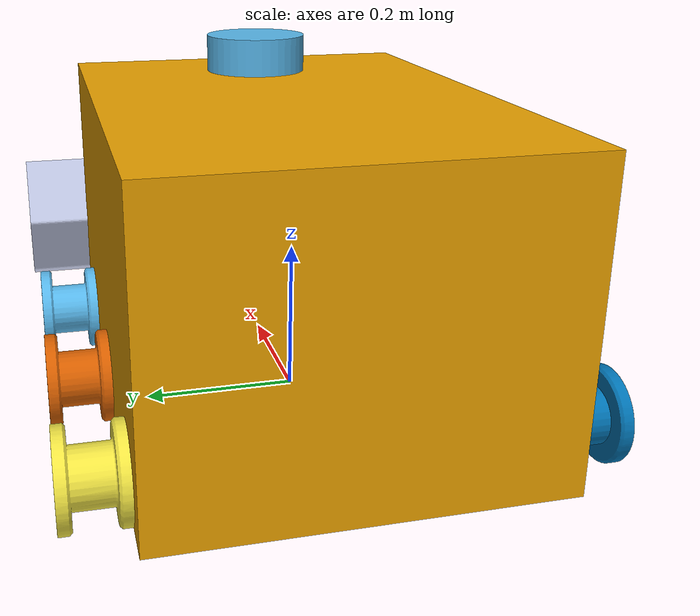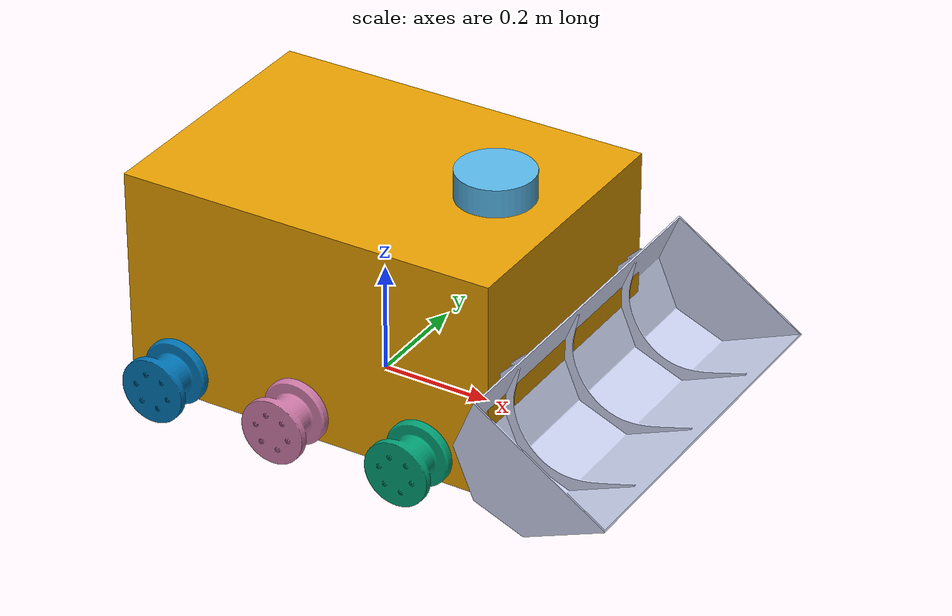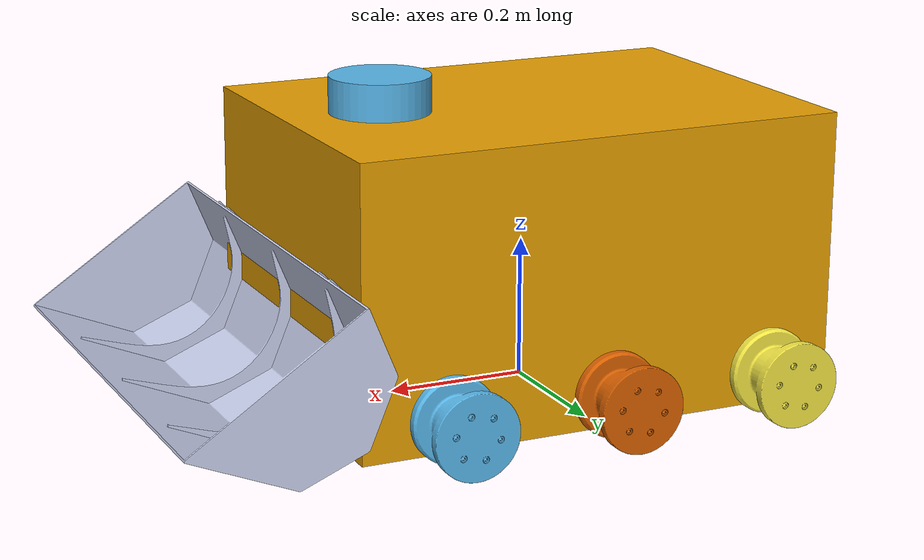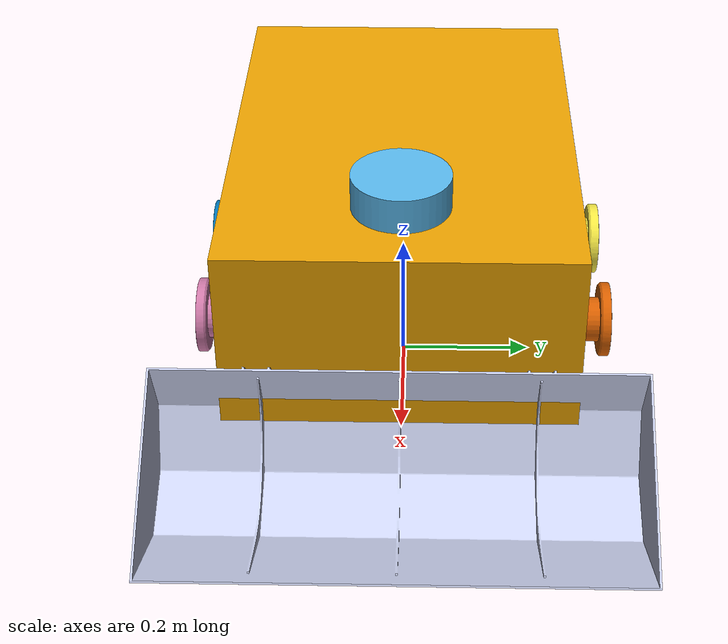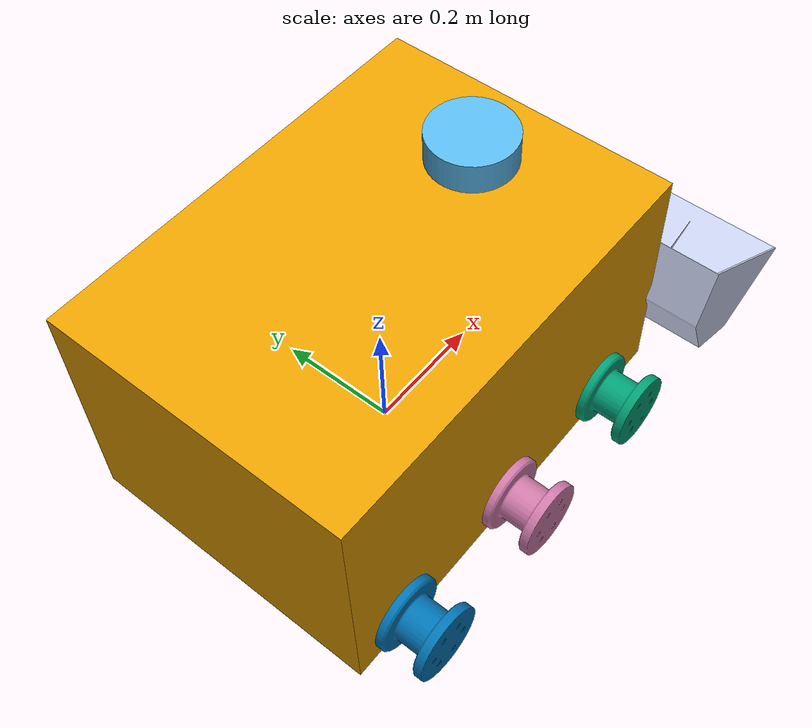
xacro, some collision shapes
<?xml version="1.0" encoding="utf-8"?>
<robot name="UGV_Unimelb" xmlns:xacro="http://www.ros.org/wiki/xacro">

  <xacro:property name="mass" value="5" />
  <xacro:include filename="$(find ugv_description)/urdf/ugv_wheel.xacro" />
  <link
    name="robot_body">
    <inertial>
      <origin
        xyz="0 0 0.2"
        rpy="0 0 0" />
      <mass
        value="${mass}" />
      <inertia
        ixx="0.854166667"
        ixy="0"
        ixz="0"
        iyy="1.354166667"
        iyz="0"
        izz="1.54166667" />
      </inertial>
    <visual>
      <geometry>
        <mesh
          filename="package://ugv_description/models/base_link.STL" />
      </geometry>
    </visual>
    <collision>
      <origin
        xyz="0 0 0.201"
        rpy="0 0 0" />
      <geometry>
        <box size="0.7 0.5 0.4"/>
      </geometry>
    </collision>
  </link>

  <xacro:UGV_Unimelb_wheel wheel_prefix="front_left" >
    <origin xyz="0 0.06 0" rpy="0 0 0" />
    <origin xyz="0 0.01 0" rpy="0 0 0" />
    <origin xyz="0 0.06 0" rpy="-1.570796327 0 0" />
    <origin xyz="0.22316 0.235 0.047662" rpy="0 0 0" />
  </xacro:UGV_Unimelb_wheel>

  <xacro:UGV_Unimelb_wheel wheel_prefix="front_right" >
    <origin xyz="0 -0.06 0" rpy="0 0 3.1415926525" />
    <origin xyz="0 -0.01 0" rpy="0 0 3.1415926525" />
    <origin xyz="0 -0.06 0" rpy="1.570796327 0 3.1415926525" />
    <origin xyz="0.22316 -0.235 0.047662" rpy="0 0 0" />
  </xacro:UGV_Unimelb_wheel>

  <xacro:UGV_Unimelb_wheel wheel_prefix="back_left" >
    <origin xyz="0 0.06 0" rpy="0 0 0" />
    <origin xyz="0 0.01 0" rpy="0 0 0" />
    <origin xyz="0 0.06 0" rpy="1.570796327 0 0" />
    <origin xyz="-0.256 0.235 0.047662" rpy="0 0 0" />
  </xacro:UGV_Unimelb_wheel>

  <xacro:UGV_Unimelb_wheel wheel_prefix="back_right" >
    <origin xyz="0 -0.06 0" rpy="0 0 3.1415926525" />
    <origin xyz="0 -0.01 0" rpy="0 0 3.1415926525" />
    <origin xyz="0 -0.06 0" rpy="1.570796327 0 3.1415926525" />
    <origin xyz="-0.256 -0.235 0.047662" rpy="0 0 0" />
  </xacro:UGV_Unimelb_wheel>

  <xacro:UGV_Unimelb_wheel wheel_prefix="left" >
    <origin xyz="0 0.06 0" rpy="0 0 0" />
    <origin xyz="0 0.01 0" rpy="0 0 0" />
    <origin xyz="0 0.06 0" rpy="1.570796327 0 0" />
    <origin xyz="-0.016169 0.235 0.047662" rpy="0 0 0" />
  </xacro:UGV_Unimelb_wheel>

  <xacro:UGV_Unimelb_wheel wheel_prefix="right" >
    <origin xyz="0 -0.06 0" rpy="0 0 3.1415926525" />
    <origin xyz="0 -0.01 0" rpy="0 0 3.1415926525" />
    <origin xyz="0 -0.06 0" rpy="-1.570796327 0 3.1415926525" />
    <origin xyz="-0.016169 -0.235 0.047662" rpy="0 0 0" />
  </xacro:UGV_Unimelb_wheel>

  <!-- Bucket -->

  <link
    name="Bucket">
    <inertial>
      <origin
        xyz="0.1 -0.211701589881784 0.1"
        rpy="0 0 0" />
      <mass
        value="1" />
      <inertia
        ixx="0.6"
        ixy="0"
        ixz="0"
        iyy="0.2"
        iyz="0"
        izz="0.6" />
    </inertial>
    <visual>
      <origin
        xyz="0 0 0"
        rpy="0 0 0" />
      <geometry>
        <mesh
          filename="package://ugv_description/models/Bucket.STL" />
      </geometry>
      <material
        name="">
        <color
          rgba="0.792156862745098 0.819607843137255 0.933333333333333 1" />
      </material>
    </visual>
    <collision>
      <origin
        xyz="0 0 0"
        rpy="0 0 0" />
      <geometry>
        <mesh
          filename="package://ugv_description/models/Bucket.STL" />
      </geometry>
    </collision>
  </link>

  <joint
    name="Joint_Bucket_left"
    type="revolute">
    <origin
      xyz="0.35883 0.2117 0.047662"
      rpy="0 0 0" />
    <parent
      link="robot_body" />
    <child
      link="Bucket" />
    <axis
      xyz="0 1 0" />
    <limit
      lower="0.05"
      upper="0.1"
      effort="0"
      velocity="0" />
  </joint>

  <!-- Camera -->

  <link
    name="Camera_link">
    <inertial>
      <origin
        xyz="-0.0893390605039384 0.000350551617509749 -0.247972031002889"
        rpy="0 0 0" />
      <mass
        value="1" />
      <inertia
        ixx="0.01"
        ixy="0"
        ixz="0"
        iyy="0.01"
        iyz="0"
        izz="0.01" />
    </inertial>
    <visual>
      <origin
        xyz="0 0 0"
        rpy="0 0 0" />
      <geometry>
        <mesh
          filename="package://ugv_description/models/Camera.STL" />
      </geometry>
      <material
        name="">
        <color
          rgba="0.792156862745098 0.819607843137255 0.933333333333333 1" />
      </material>
    </visual>
    <collision>
      <origin
        xyz="0 0 0"
        rpy="0 0 0" />
      <geometry>
        <mesh
          filename="package://ugv_description/models/Camera.STL" />
      </geometry>
    </collision>
  </link>

  <gazebo reference="Camera_link">
    <sensor type="camera" name="front_camera">
      <update_rate>30.0</update_rate>
      <camera name="front_eye">
        <horizontal_fov>1.3962634</horizontal_fov>
        <image>
          <width>800</width>
          <height>800</height>
          <format>R8G8B8</format>
        </image>
        <clip>
          <near>0.02</near>
          <far>300</far>
        </clip>
        <noise>
          <type>gaussian</type>
          <mean>0.0</mean>
          <stddev>0.007</stddev>
        </noise>
      </camera>
      <plugin name="camera_controller" filename="libgazebo_ros_camera.so">
        <alwaysOn>true</alwaysOn>
        <updateRate>0.0</updateRate>
        <cameraName>rrbot/camera1</cameraName>
        <imageTopicName>image_raw</imageTopicName>
        <cameraInfoTopicName>camera_info</cameraInfoTopicName>
        <frameName>camera_link</frameName>
        <hackBaseline>0.07</hackBaseline>
        <distortionK1>0.0</distortionK1>
        <distortionK2>0.0</distortionK2>
        <distortionK3>0.0</distortionK3>
        <distortionT1>0.0</distortionT1>
        <distortionT2>0.0</distortionT2>
      </plugin>
    </sensor>
  </gazebo>

  <joint
    name="joint_camera"
    type="fixed">
    <origin
      xyz="0.29633 0 0.337"
      rpy="0 0 0" />
    <parent
      link="robot_body" />
    <child
      link="Camera_link" />
    <axis
      xyz="0 0 0" />
  </joint>

  <!-- Lidar -->

  <link
    name="Lidar_link">
    <inertial>
      <origin
        xyz="-2.77555756156289E-17 4.74552056052413E-18 0.0254999999999999"
        rpy="0 0 0" />
      <mass
        value="1" />
      <inertia
        ixx="0.00113189486295744"
        ixy="1.95759134039956E-51"
        ixz="-2.7081123881694E-36"
        iyy="0.00113189486295744"
        iyz="2.56494604465062E-19"
        izz="0.00192345581012362" />
    </inertial>
    <visual>
      <origin
        xyz="0 0 0"
        rpy="0 0 0" />
      <geometry>
        <mesh
          filename="package://ugv_description/models/Lidar.STL" />
      </geometry>
    </visual>
    <collision>
      <origin
        xyz="0 0 0"
        rpy="0 0 0" />
      <geometry>
        <mesh
          filename="package://ugv_description/models/Lidar.STL" />
      </geometry>
    </collision>
  </link>

  <gazebo reference="Lidar_link">
    <sensor type="ray" name="head_hokuyo_sensor">
      <pose>0 0 0.05 0 0 0</pose>
      <visualize>true</visualize>
      <update_rate>30</update_rate>
      <ray>
        <scan>
          <horizontal>
            <samples>720</samples>
            <resolution>1</resolution>
            <min_angle>-0.5235987756</min_angle>
            <max_angle>0.5235987756</max_angle>
          </horizontal>
        </scan>
        <range>
          <min>0.10</min>
          <max>30.0</max>
          <resolution>0.01</resolution>
        </range>

      </ray>
      <plugin name="gazebo_ros_head_hokuyo_controller" filename="libgazebo_ros_laser.so">
        <topicName>/rrbot/laser/scan</topicName>
        <frameName>Lidar_link</frameName>
      </plugin>
    </sensor>
  </gazebo>

  <joint
    name="joint_lidar"
    type="fixed">
    <origin
      xyz="0.21533 0 0.403"
      rpy="0 0 0" />
    <parent
      link="robot_body" />
    <child
      link="Lidar_link" />
    <axis
      xyz="0 0 1" />
  </joint>

  <!-- drivers -->

  <gazebo>
    <plugin name="gazebo_ros_control" filename="libgazebo_ros_control.so">
      <robotNamespace>/UGV_Unimelb</robotNamespace>
    </plugin>
  </gazebo>

  <!-- Bucket driver -->

  <transmission name="bucket_trans">
    <type>transmission_interface/SimpleTransmission</type>
    <joint name="Joint_Bucket_left">
      <hardwareInterface>EffortJointInterface</hardwareInterface>
    </joint>
    <actuator name="motor_bucket_trans">
      <hardwareInterface>EffortJointInterface</hardwareInterface>
      <mechanicalReduction>1</mechanicalReduction>
    </actuator>
  </transmission>

  <!-- IMU sensor -->

  <gazebo reference="robot_body">
    <gravity>true</gravity>
    <sensor name="imu_sensor" type="imu">
      <always_on>true</always_on>
      <update_rate>100</update_rate>
      <visualize>true</visualize>
      <topic>__default_topic__</topic>
      <plugin filename="libgazebo_ros_imu_sensor.so" name="imu_plugin">
        <topicName>imu</topicName>
        <bodyName>robot_body</bodyName>
        <updateRateHZ>30.0</updateRateHZ>
        <gaussianNoise>0.0</gaussianNoise>
        <xyzOffset>0 0 0</xyzOffset>
        <rpyOffset>0 0 0</rpyOffset>
        <frameName>robot_body</frameName>
        <initialOrientationAsReference>false</initialOrientationAsReference>
      </plugin>
      <pose>0 0 0 0 0 0</pose>
    </sensor>
  </gazebo>

</robot>

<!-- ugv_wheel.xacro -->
<robot xmlns:xacro="http://www.ros.org/wiki/xacro" name="UGV_Unimelb_wheel" >

<xacro:macro name="UGV_Unimelb_wheel"
        params="wheel_prefix *inertial_pose *visual_pose *collision_pose *joint_pose" >
    <link name="${wheel_prefix}_wheel" >
        <inertial>
            <mass value="1.0" />
            <xacro:insert_block name="inertial_pose" />
            <inertia
                ixx="0.007166667"
                ixy="0"
                ixz="0"
                iyy="0.009"
                iyz="0"
                izz="0.007166667" />
        </inertial>
        <visual>
            <xacro:insert_block name="visual_pose" />
            <geometry>
                <mesh filename="package://ugv_description/models/Left_Front_Wheel.STL" />
                <surface>
                    <friction>
                        <ode>
                        <kp>10000000</kp>
                        <kd>100</kd>
                        <mu1>1.0</mu1>
                        <mu2>1.0</mu2>
                        </ode>
                    </friction>
                </surface>
            </geometry>
        </visual>
        <collision>
            <xacro:insert_block name="collision_pose" />
            <geometry>
                <cylinder length="0.08" radius="0.06"/>
                <surface>
                    <friction>
                        <ode>
                        <kp>100000000</kp>
                        <kd>1000</kd>
                        <mu1>1.0</mu1>
                        <mu2>1.0</mu2>
                        </ode>
                    </friction>
                </surface>
            </geometry>
            <material>Gazebo/FlatBlack</material>
        </collision>
    </link>

    <joint name="${wheel_prefix}_wheel_joint" type="continuous" >
        <parent link="robot_body" />
        <child link="${wheel_prefix}_wheel" />
        <axis xyz="0 1 0" rpy="0 0 0" />
        <xacro:insert_block name="joint_pose" />
        <dynamics damping="0.7" friction="1.0" />
    </joint>

    <transmission name="${wheel_prefix}_wheel_trans" >
        <type>transmission_interface/SimpleTransmission</type>
        <joint name="${wheel_prefix}_wheel_joint" >
            <hardwareInterface>hardware_interface/VelocityJointInterface</hardwareInterface>
        </joint>
        <actuator name="${wheel_prefix}_wheel_motor" >
            <hardwareInterface>VelocityJointInterface</hardwareInterface>
            <mechanicalReduction>7</mechanicalReduction>
        </actuator>
    </transmission>

</xacro:macro>
</robot>
